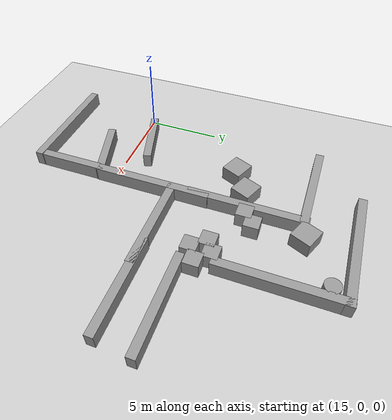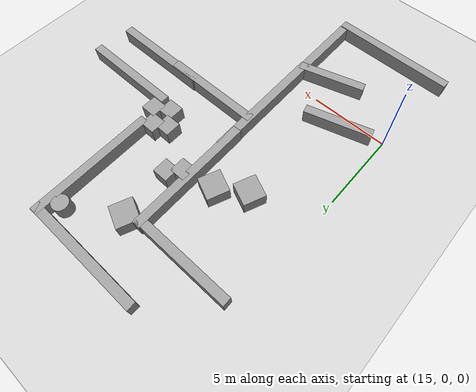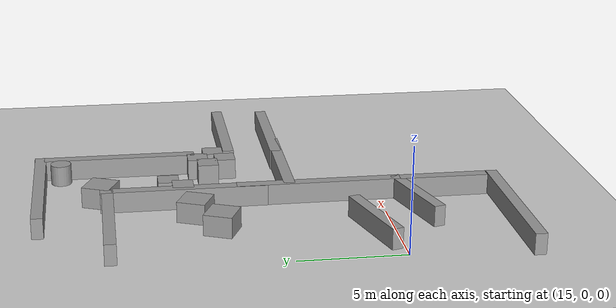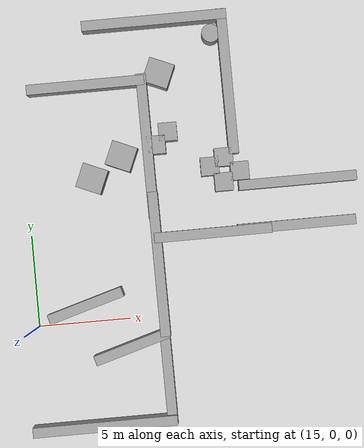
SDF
<sdf version="1.6">
 <world name="default">
  <model name="ground_plane">
   <static>1</static>
   <link name="link">
    <collision name="collision">
     <geometry><plane><normal>0 0 1</normal><size>100 100</size></plane></geometry>
     <surface><friction><ode><mu>100</mu><mu2>50</mu2></ode></friction></surface>
    </collision>
    <visual name="visual">
     <cast_shadows>0</cast_shadows>
     <geometry><plane><normal>0 0 1</normal><size>100 100</size></plane></geometry>
     <material>
      <script><uri>file://media/materials/scripts/gazebo.material</uri><name>Gazebo/Grey</name></script>
     </material>
    </visual>
   </link>
  </model>
  <model name="com760-maze">
   <link name="link_10">
    <pose>9.80009 2.02423 9e-06 0 -0 0</pose>
    <inertial>
     <mass>1</mass>
     <inertia>
      <ixx>0.166667</ixx>
      <ixy>0</ixy>
      <ixz>0</ixz>
      <iyy>0.166667</iyy>
      <iyz>0</iyz>
      <izz>0.166667</izz>
     </inertia>
    </inertial>
    <visual name="visual">
     <geometry><box><size>1 1 1</size></box></geometry>
     <material>
      <lighting>1</lighting>
      <script><uri>file://media/materials/scripts/gazebo.material</uri><name>Gazebo/Grey</name></script>
      <ambient>0.3 0.3 0.3 1</ambient>
      <diffuse>0.7 0.7 0.7 1</diffuse>
      <specular>0.01 0.01 0.01 1</specular>
      <emissive>0 0 0 1</emissive>
     </material>
    </visual>
    <collision name="collision">
     <geometry><box><size>1 1 1</size></box></geometry>
     <surface>
      <friction>
       <ode><mu>1</mu><mu2>1</mu2><fdir1>0 0 0</fdir1><slip1>0</slip1><slip2>0</slip2></ode>
       <torsional>
        <coefficient>1</coefficient>
        <patch_radius>0</patch_radius>
        <surface_radius>0</surface_radius>
        <use_patch_radius>1</use_patch_radius>
        <ode><slip>0</slip></ode>
       </torsional>
      </friction>
      <bounce><restitution_coefficient>0</restitution_coefficient><threshold>1e+06</threshold></bounce>
      <contact>
       <collide_without_contact>0</collide_without_contact>
       <collide_without_contact_bitmask>1</collide_without_contact_bitmask>
       <collide_bitmask>1</collide_bitmask>
       <ode>
        <soft_cfm>0</soft_cfm>
        <soft_erp>0.2</soft_erp>
        <kp>1e+13</kp>
        <kd>1</kd>
        <max_vel>0.01</max_vel>
        <min_depth>0</min_depth>
       </ode>
       <bullet>
        <split_impulse>1</split_impulse>
        <split_impulse_penetration_threshold>-0.01</split_impulse_penetration_threshold>
        <soft_cfm>0</soft_cfm>
        <soft_erp>0.2</soft_erp>
        <kp>1e+13</kp>
        <kd>1</kd>
       </bullet>
      </contact>
     </surface>
    </collision>
   </link>
   <link name="link_11">
    <pose>6.31823 4.34711 9e-06 0 -0 0</pose>
    <inertial>
     <mass>1</mass>
     <inertia>
      <ixx>0.166667</ixx>
      <ixy>0</ixy>
      <ixz>0</ixz>
      <iyy>0.166667</iyy>
      <iyz>0</iyz>
      <izz>0.166667</izz>
     </inertia>
    </inertial>
    <visual name="visual">
     <geometry><box><size>1 1 1</size></box></geometry>
     <material>
      <lighting>1</lighting>
      <script><uri>file://media/materials/scripts/gazebo.material</uri><name>Gazebo/Grey</name></script>
      <ambient>0.3 0.3 0.3 1</ambient>
      <diffuse>0.7 0.7 0.7 1</diffuse>
      <specular>0.01 0.01 0.01 1</specular>
      <emissive>0 0 0 1</emissive>
     </material>
    </visual>
    <collision name="collision">
     <geometry><box><size>1 1 1</size></box></geometry>
     <surface>
      <friction>
       <ode><mu>1</mu><mu2>1</mu2><fdir1>0 0 0</fdir1><slip1>0</slip1><slip2>0</slip2></ode>
       <torsional>
        <coefficient>1</coefficient>
        <patch_radius>0</patch_radius>
        <surface_radius>0</surface_radius>
        <use_patch_radius>1</use_patch_radius>
        <ode><slip>0</slip></ode>
       </torsional>
      </friction>
      <bounce><restitution_coefficient>0</restitution_coefficient><threshold>1e+06</threshold></bounce>
      <contact>
       <collide_without_contact>0</collide_without_contact>
       <collide_without_contact_bitmask>1</collide_without_contact_bitmask>
       <collide_bitmask>1</collide_bitmask>
       <ode>
        <soft_cfm>0</soft_cfm>
        <soft_erp>0.2</soft_erp>
        <kp>1e+13</kp>
        <kd>1</kd>
        <max_vel>0.01</max_vel>
        <min_depth>0</min_depth>
       </ode>
       <bullet>
        <split_impulse>1</split_impulse>
        <split_impulse_penetration_threshold>-0.01</split_impulse_penetration_threshold>
        <soft_cfm>0</soft_cfm>
        <soft_erp>0.2</soft_erp>
        <kp>1e+13</kp>
        <kd>1</kd>
       </bullet>
      </contact>
     </surface>
    </collision>
   </link>
   <link name="link_12">
    <pose>7.00494 5.00129 9e-06 0 -0 0</pose>
    <inertial>
     <mass>1</mass>
     <inertia>
      <ixx>0.166667</ixx>
      <ixy>0</ixy>
      <ixz>0</ixz>
      <iyy>0.166667</iyy>
      <iyz>0</iyz>
      <izz>0.166667</izz>
     </inertia>
    </inertial>
    <visual name="visual">
     <geometry><box><size>1 1 1</size></box></geometry>
     <material>
      <lighting>1</lighting>
      <script><uri>file://media/materials/scripts/gazebo.material</uri><name>Gazebo/Grey</name></script>
      <ambient>0.3 0.3 0.3 1</ambient>
      <diffuse>0.7 0.7 0.7 1</diffuse>
      <specular>0.01 0.01 0.01 1</specular>
      <emissive>0 0 0 1</emissive>
     </material>
    </visual>
    <collision name="collision">
     <geometry><box><size>1 1 1</size></box></geometry>
     <surface>
      <friction>
       <ode><mu>1</mu><mu2>1</mu2><fdir1>0 0 0</fdir1><slip1>0</slip1><slip2>0</slip2></ode>
       <torsional>
        <coefficient>1</coefficient>
        <patch_radius>0</patch_radius>
        <surface_radius>0</surface_radius>
        <use_patch_radius>1</use_patch_radius>
        <ode><slip>0</slip></ode>
       </torsional>
      </friction>
      <bounce><restitution_coefficient>0</restitution_coefficient><threshold>1e+06</threshold></bounce>
      <contact>
       <collide_without_contact>0</collide_without_contact>
       <collide_without_contact_bitmask>1</collide_without_contact_bitmask>
       <collide_bitmask>1</collide_bitmask>
       <ode>
        <soft_cfm>0</soft_cfm>
        <soft_erp>0.2</soft_erp>
        <kp>1e+13</kp>
        <kd>1</kd>
        <max_vel>0.01</max_vel>
        <min_depth>0</min_depth>
       </ode>
       <bullet>
        <split_impulse>1</split_impulse>
        <split_impulse_penetration_threshold>-0.01</split_impulse_penetration_threshold>
        <soft_cfm>0</soft_cfm>
        <soft_erp>0.2</soft_erp>
        <kp>1e+13</kp>
        <kd>1</kd>
       </bullet>
      </contact>
     </surface>
    </collision>
   </link>
   <link name="link_14">
    <pose>10.7124 2.54643 9e-06 0 -0 0</pose>
    <inertial>
     <mass>1</mass>
     <inertia>
      <ixx>0.166667</ixx>
      <ixy>0</ixy>
      <ixz>0</ixz>
      <iyy>0.166667</iyy>
      <iyz>0</iyz>
      <izz>0.166667</izz>
     </inertia>
    </inertial>
    <visual name="visual">
     <geometry><box><size>1 1 1</size></box></geometry>
     <material>
      <lighting>1</lighting>
      <script><uri>file://media/materials/scripts/gazebo.material</uri><name>Gazebo/Grey</name></script>
      <ambient>0.3 0.3 0.3 1</ambient>
      <diffuse>0.7 0.7 0.7 1</diffuse>
      <specular>0.01 0.01 0.01 1</specular>
      <emissive>0 0 0 1</emissive>
     </material>
    </visual>
    <collision name="collision">
     <geometry><box><size>1 1 1</size></box></geometry>
     <surface>
      <friction>
       <ode><mu>1</mu><mu2>1</mu2><fdir1>0 0 0</fdir1><slip1>0</slip1><slip2>0</slip2></ode>
       <torsional>
        <coefficient>1</coefficient>
        <patch_radius>0</patch_radius>
        <surface_radius>0</surface_radius>
        <use_patch_radius>1</use_patch_radius>
        <ode><slip>0</slip></ode>
       </torsional>
      </friction>
      <bounce><restitution_coefficient>0</restitution_coefficient><threshold>1e+06</threshold></bounce>
      <contact>
       <collide_without_contact>0</collide_without_contact>
       <collide_without_contact_bitmask>1</collide_without_contact_bitmask>
       <collide_bitmask>1</collide_bitmask>
       <ode>
        <soft_cfm>0</soft_cfm>
        <soft_erp>0.2</soft_erp>
        <kp>1e+13</kp>
        <kd>1</kd>
        <max_vel>0.01</max_vel>
        <min_depth>0</min_depth>
       </ode>
       <bullet>
        <split_impulse>1</split_impulse>
        <split_impulse_penetration_threshold>-0.01</split_impulse_penetration_threshold>
        <soft_cfm>0</soft_cfm>
        <soft_erp>0.2</soft_erp>
        <kp>1e+13</kp>
        <kd>1</kd>
       </bullet>
      </contact>
     </surface>
    </collision>
   </link>
   <link name="link_4_clone_0_clone_clone_1_clone_0_clone">
    <pose>2.19804 -10.643 9e-06 0 -0 0</pose>
    <inertial>
     <mass>4.30693</mass>
     <inertia><ixx>0.46587</ixx><ixy>0</ixy><ixz>0</ixz><iyy>22.6991</iyy><iyz>0</iyz><izz>22.4471</izz></inertia>
    </inertial>
    <visual name="visual">
     <geometry><box><size>7.88951 0.545905 1</size></box></geometry>
     <material>
      <lighting>1</lighting>
      <script><uri>file://media/materials/scripts/gazebo.material</uri><name>Gazebo/Grey</name></script>
      <ambient>0.3 0.3 0.3 1</ambient>
      <diffuse>0.7 0.7 0.7 1</diffuse>
      <specular>0.01 0.01 0.01 1</specular>
      <emissive>0 0 0 1</emissive>
      <shader type="pixel"/>
     </material>
    </visual>
    <collision name="collision">
     <geometry><box><size>7.88951 0.545905 1</size></box></geometry>
     <surface>
      <friction>
       <ode><mu>1</mu><mu2>1</mu2><fdir1>0 0 0</fdir1><slip1>0</slip1><slip2>0</slip2></ode>
       <torsional>
        <coefficient>1</coefficient>
        <patch_radius>0</patch_radius>
        <surface_radius>0</surface_radius>
        <use_patch_radius>1</use_patch_radius>
        <ode><slip>0</slip></ode>
       </torsional>
      </friction>
      <bounce><restitution_coefficient>0</restitution_coefficient><threshold>1e+06</threshold></bounce>
      <contact>
       <collide_without_contact>0</collide_without_contact>
       <collide_without_contact_bitmask>1</collide_without_contact_bitmask>
       <collide_bitmask>1</collide_bitmask>
       <ode>
        <soft_cfm>0</soft_cfm>
        <soft_erp>0.2</soft_erp>
        <kp>1e+13</kp>
        <kd>1</kd>
        <max_vel>0.01</max_vel>
        <min_depth>0</min_depth>
       </ode>
       <bullet>
        <split_impulse>1</split_impulse>
        <split_impulse_penetration_threshold>-0.01</split_impulse_penetration_threshold>
        <soft_cfm>0</soft_cfm>
        <soft_erp>0.2</soft_erp>
        <kp>1e+13</kp>
        <kd>1</kd>
       </bullet>
      </contact>
     </surface>
    </collision>
   </link>
   <link name="link_4_clone_0_clone_clone_1_clone_0_clone_0_clone">
    <pose>6.79233 11.1081 9e-06 0 -0 0</pose>
    <inertial>
     <mass>4.30693</mass>
     <inertia><ixx>0.46587</ixx><ixy>0</ixy><ixz>0</ixz><iyy>22.6991</iyy><iyz>0</iyz><izz>22.4471</izz></inertia>
    </inertial>
    <visual name="visual">
     <geometry><box><size>7.88951 0.545905 1</size></box></geometry>
     <material>
      <lighting>1</lighting>
      <script><uri>file://media/materials/scripts/gazebo.material</uri><name>Gazebo/Grey</name></script>
      <ambient>0.3 0.3 0.3 1</ambient>
      <diffuse>0.7 0.7 0.7 1</diffuse>
      <specular>0.01 0.01 0.01 1</specular>
      <emissive>0 0 0 1</emissive>
      <shader type="pixel"/>
     </material>
    </visual>
    <collision name="collision">
     <geometry><box><size>7.88951 0.545905 1</size></box></geometry>
     <surface>
      <friction>
       <ode><mu>1</mu><mu2>1</mu2><fdir1>0 0 0</fdir1><slip1>0</slip1><slip2>0</slip2></ode>
       <torsional>
        <coefficient>1</coefficient>
        <patch_radius>0</patch_radius>
        <surface_radius>0</surface_radius>
        <use_patch_radius>1</use_patch_radius>
        <ode><slip>0</slip></ode>
       </torsional>
      </friction>
      <bounce><restitution_coefficient>0</restitution_coefficient><threshold>1e+06</threshold></bounce>
      <contact>
       <collide_without_contact>0</collide_without_contact>
       <collide_without_contact_bitmask>1</collide_without_contact_bitmask>
       <collide_bitmask>1</collide_bitmask>
       <ode>
        <soft_cfm>0</soft_cfm>
        <soft_erp>0.2</soft_erp>
        <kp>1e+13</kp>
        <kd>1</kd>
        <max_vel>0.01</max_vel>
        <min_depth>0</min_depth>
       </ode>
       <bullet>
        <split_impulse>1</split_impulse>
        <split_impulse_penetration_threshold>-0.01</split_impulse_penetration_threshold>
        <soft_cfm>0</soft_cfm>
        <soft_erp>0.2</soft_erp>
        <kp>1e+13</kp>
        <kd>1</kd>
       </bullet>
      </contact>
     </surface>
    </collision>
   </link>
   <link name="link_4_clone_0_clone_clone_1_clone_clone">
    <pose>2.76705 7.92871 9e-06 0 -0 0</pose>
    <inertial>
     <mass>3.50538</mass>
     <inertia><ixx>0.379168</ixx><ixy>0</ixy><ixz>0</ixz><iyy>12.3366</iyy><iyz>0</iyz><izz>12.1315</izz></inertia>
    </inertial>
    <visual name="visual">
     <geometry><box><size>6.42122 0.545905 1</size></box></geometry>
     <material>
      <lighting>1</lighting>
      <script><uri>file://media/materials/scripts/gazebo.material</uri><name>Gazebo/Grey</name></script>
      <ambient>0.3 0.3 0.3 1</ambient>
      <diffuse>0.7 0.7 0.7 1</diffuse>
      <specular>0.01 0.01 0.01 1</specular>
      <emissive>0 0 0 1</emissive>
      <shader type="pixel"/>
     </material>
    </visual>
    <collision name="collision">
     <geometry><box><size>6.42122 0.545905 1</size></box></geometry>
     <surface>
      <friction>
       <ode><mu>1</mu><mu2>1</mu2><fdir1>0 0 0</fdir1><slip1>0</slip1><slip2>0</slip2></ode>
       <torsional>
        <coefficient>1</coefficient>
        <patch_radius>0</patch_radius>
        <surface_radius>0</surface_radius>
        <use_patch_radius>1</use_patch_radius>
        <ode><slip>0</slip></ode>
       </torsional>
      </friction>
      <bounce><restitution_coefficient>0</restitution_coefficient><threshold>1e+06</threshold></bounce>
      <contact>
       <collide_without_contact>0</collide_without_contact>
       <collide_without_contact_bitmask>1</collide_without_contact_bitmask>
       <collide_bitmask>1</collide_bitmask>
       <ode>
        <soft_cfm>0</soft_cfm>
        <soft_erp>0.2</soft_erp>
        <kp>1e+13</kp>
        <kd>1</kd>
        <max_vel>0.01</max_vel>
        <min_depth>0</min_depth>
       </ode>
       <bullet>
        <split_impulse>1</split_impulse>
        <split_impulse_penetration_threshold>-0.01</split_impulse_penetration_threshold>
        <soft_cfm>0</soft_cfm>
        <soft_erp>0.2</soft_erp>
        <kp>1e+13</kp>
        <kd>1</kd>
       </bullet>
      </contact>
     </surface>
    </collision>
   </link>
   <link name="link_4_clone_0_clone_clone_1_clone_clone_0">
    <pose>8.96944 -0.687018 9e-06 0 -0 0</pose>
    <inertial>
     <mass>3.50538</mass>
     <inertia><ixx>0.379168</ixx><ixy>0</ixy><ixz>0</ixz><iyy>12.3366</iyy><iyz>0</iyz><izz>12.1315</izz></inertia>
    </inertial>
    <visual name="visual">
     <geometry><box><size>6.42122 0.545905 1</size></box></geometry>
     <material>
      <lighting>1</lighting>
      <script><uri>file://media/materials/scripts/gazebo.material</uri><name>Gazebo/Grey</name></script>
      <ambient>0.3 0.3 0.3 1</ambient>
      <diffuse>0.7 0.7 0.7 1</diffuse>
      <specular>0.01 0.01 0.01 1</specular>
      <emissive>0 0 0 1</emissive>
      <shader type="pixel"/>
     </material>
    </visual>
    <collision name="collision">
     <geometry><box><size>6.42122 0.545905 1</size></box></geometry>
     <surface>
      <friction>
       <ode><mu>1</mu><mu2>1</mu2><fdir1>0 0 0</fdir1><slip1>0</slip1><slip2>0</slip2></ode>
       <torsional>
        <coefficient>1</coefficient>
        <patch_radius>0</patch_radius>
        <surface_radius>0</surface_radius>
        <use_patch_radius>1</use_patch_radius>
        <ode><slip>0</slip></ode>
       </torsional>
      </friction>
      <bounce><restitution_coefficient>0</restitution_coefficient><threshold>1e+06</threshold></bounce>
      <contact>
       <collide_without_contact>0</collide_without_contact>
       <collide_without_contact_bitmask>1</collide_without_contact_bitmask>
       <collide_bitmask>1</collide_bitmask>
       <ode>
        <soft_cfm>0</soft_cfm>
        <soft_erp>0.2</soft_erp>
        <kp>1e+13</kp>
        <kd>1</kd>
        <max_vel>0.01</max_vel>
        <min_depth>0</min_depth>
       </ode>
       <bullet>
        <split_impulse>1</split_impulse>
        <split_impulse_penetration_threshold>-0.01</split_impulse_penetration_threshold>
        <soft_cfm>0</soft_cfm>
        <soft_erp>0.2</soft_erp>
        <kp>1e+13</kp>
        <kd>1</kd>
       </bullet>
      </contact>
     </surface>
    </collision>
   </link>
   <link name="link_4_clone_0_clone_clone_1_clone_clone_0_clone">
    <pose>13.8 1.7484 9e-06 0 -0 0</pose>
    <inertial>
     <mass>3.50538</mass>
     <inertia><ixx>0.379168</ixx><ixy>0</ixy><ixz>0</ixz><iyy>12.3366</iyy><iyz>0</iyz><izz>12.1315</izz></inertia>
    </inertial>
    <visual name="visual">
     <geometry><box><size>6.42122 0.545905 1</size></box></geometry>
     <material>
      <lighting>1</lighting>
      <script><uri>file://media/materials/scripts/gazebo.material</uri><name>Gazebo/Grey</name></script>
      <ambient>0.3 0.3 0.3 1</ambient>
      <diffuse>0.7 0.7 0.7 1</diffuse>
      <specular>0.01 0.01 0.01 1</specular>
      <emissive>0 0 0 1</emissive>
      <shader type="pixel"/>
     </material>
    </visual>
    <collision name="collision">
     <geometry><box><size>6.42122 0.545905 1</size></box></geometry>
     <surface>
      <friction>
       <ode><mu>1</mu><mu2>1</mu2><fdir1>0 0 0</fdir1><slip1>0</slip1><slip2>0</slip2></ode>
       <torsional>
        <coefficient>1</coefficient>
        <patch_radius>0</patch_radius>
        <surface_radius>0</surface_radius>
        <use_patch_radius>1</use_patch_radius>
        <ode><slip>0</slip></ode>
       </torsional>
      </friction>
      <bounce><restitution_coefficient>0</restitution_coefficient><threshold>1e+06</threshold></bounce>
      <contact>
       <collide_without_contact>0</collide_without_contact>
       <collide_without_contact_bitmask>1</collide_without_contact_bitmask>
       <collide_bitmask>1</collide_bitmask>
       <ode>
        <soft_cfm>0</soft_cfm>
        <soft_erp>0.2</soft_erp>
        <kp>1e+13</kp>
        <kd>1</kd>
        <max_vel>0.01</max_vel>
        <min_depth>0</min_depth>
       </ode>
       <bullet>
        <split_impulse>1</split_impulse>
        <split_impulse_penetration_threshold>-0.01</split_impulse_penetration_threshold>
        <soft_cfm>0</soft_cfm>
        <soft_erp>0.2</soft_erp>
        <kp>1e+13</kp>
        <kd>1</kd>
       </bullet>
      </contact>
     </surface>
    </collision>
   </link>
   <link name="link_4_clone_0_clone_clone_1_clone_clone_1">
    <pose>13.5436 -0.632276 9e-06 0 -0 0</pose>
    <inertial>
     <mass>3.50538</mass>
     <inertia><ixx>0.379168</ixx><ixy>0</ixy><ixz>0</ixz><iyy>12.3366</iyy><iyz>0</iyz><izz>12.1315</izz></inertia>
    </inertial>
    <visual name="visual">
     <geometry><box><size>6.42122 0.545905 1</size></box></geometry>
     <material>
      <lighting>1</lighting>
      <script><uri>file://media/materials/scripts/gazebo.material</uri><name>Gazebo/Grey</name></script>
      <ambient>0.3 0.3 0.3 1</ambient>
      <diffuse>0.7 0.7 0.7 1</diffuse>
      <specular>0.01 0.01 0.01 1</specular>
      <emissive>0 0 0 1</emissive>
      <shader type="pixel"/>
     </material>
    </visual>
    <collision name="collision">
     <geometry><box><size>6.42122 0.545905 1</size></box></geometry>
     <surface>
      <friction>
       <ode><mu>1</mu><mu2>1</mu2><fdir1>0 0 0</fdir1><slip1>0</slip1><slip2>0</slip2></ode>
       <torsional>
        <coefficient>1</coefficient>
        <patch_radius>0</patch_radius>
        <surface_radius>0</surface_radius>
        <use_patch_radius>1</use_patch_radius>
        <ode><slip>0</slip></ode>
       </torsional>
      </friction>
      <bounce><restitution_coefficient>0</restitution_coefficient><threshold>1e+06</threshold></bounce>
      <contact>
       <collide_without_contact>0</collide_without_contact>
       <collide_without_contact_bitmask>1</collide_without_contact_bitmask>
       <collide_bitmask>1</collide_bitmask>
       <ode>
        <soft_cfm>0</soft_cfm>
        <soft_erp>0.2</soft_erp>
        <kp>1e+13</kp>
        <kd>1</kd>
        <max_vel>0.01</max_vel>
        <min_depth>0</min_depth>
       </ode>
       <bullet>
        <split_impulse>1</split_impulse>
        <split_impulse_penetration_threshold>-0.01</split_impulse_penetration_threshold>
        <soft_cfm>0</soft_cfm>
        <soft_erp>0.2</soft_erp>
        <kp>1e+13</kp>
        <kd>1</kd>
       </bullet>
      </contact>
     </surface>
    </collision>
   </link>
   <link name="link_4_clone_1_clone_1_clone_0_clone">
    <pose>5.88859 -2.1218 9e-06 -0 -0 -1.56693</pose>
    <inertial>
     <mass>4.30693</mass>
     <inertia><ixx>0.46587</ixx><ixy>0</ixy><ixz>0</ixz><iyy>22.6991</iyy><iyz>0</iyz><izz>22.4471</izz></inertia>
    </inertial>
    <visual name="visual">
     <geometry><box><size>7.88951 0.545905 1</size></box></geometry>
     <material>
      <lighting>1</lighting>
      <script><uri>file://media/materials/scripts/gazebo.material</uri><name>Gazebo/Grey</name></script>
      <ambient>0.3 0.3 0.3 1</ambient>
      <diffuse>0.7 0.7 0.7 1</diffuse>
      <specular>0.01 0.01 0.01 1</specular>
      <emissive>0 0 0 1</emissive>
      <shader type="pixel"/>
     </material>
    </visual>
    <collision name="collision">
     <geometry><box><size>7.88951 0.545905 1</size></box></geometry>
     <surface>
      <friction>
       <ode><mu>1</mu><mu2>1</mu2><fdir1>0 0 0</fdir1><slip1>0</slip1><slip2>0</slip2></ode>
       <torsional>
        <coefficient>1</coefficient>
        <patch_radius>0</patch_radius>
        <surface_radius>0</surface_radius>
        <use_patch_radius>1</use_patch_radius>
        <ode><slip>0</slip></ode>
       </torsional>
      </friction>
      <bounce><restitution_coefficient>0</restitution_coefficient><threshold>1e+06</threshold></bounce>
      <contact>
       <collide_without_contact>0</collide_without_contact>
       <collide_without_contact_bitmask>1</collide_without_contact_bitmask>
       <collide_bitmask>1</collide_bitmask>
       <ode>
        <soft_cfm>0</soft_cfm>
        <soft_erp>0.2</soft_erp>
        <kp>1e+13</kp>
        <kd>1</kd>
        <max_vel>0.01</max_vel>
        <min_depth>0</min_depth>
       </ode>
       <bullet>
        <split_impulse>1</split_impulse>
        <split_impulse_penetration_threshold>-0.01</split_impulse_penetration_threshold>
        <soft_cfm>0</soft_cfm>
        <soft_erp>0.2</soft_erp>
        <kp>1e+13</kp>
        <kd>1</kd>
       </bullet>
      </contact>
     </surface>
    </collision>
   </link>
   <link name="link_4_clone_1_clone_1_clone_0_clone_clone">
    <pose>10.4715 7.44804 9e-06 -0 -0 -1.56693</pose>
    <inertial>
     <mass>4.30693</mass>
     <inertia><ixx>0.46587</ixx><ixy>0</ixy><ixz>0</ixz><iyy>22.6991</iyy><iyz>0</iyz><izz>22.4471</izz></inertia>
    </inertial>
    <visual name="visual">
     <geometry><box><size>7.88951 0.545905 1</size></box></geometry>
     <material>
      <lighting>1</lighting>
      <script><uri>file://media/materials/scripts/gazebo.material</uri><name>Gazebo/Grey</name></script>
      <ambient>0.3 0.3 0.3 1</ambient>
      <diffuse>0.7 0.7 0.7 1</diffuse>
      <specular>0.01 0.01 0.01 1</specular>
      <emissive>0 0 0 1</emissive>
      <shader type="pixel"/>
     </material>
    </visual>
    <collision name="collision">
     <geometry><box><size>7.88951 0.545905 1</size></box></geometry>
     <surface>
      <friction>
       <ode><mu>1</mu><mu2>1</mu2><fdir1>0 0 0</fdir1><slip1>0</slip1><slip2>0</slip2></ode>
       <torsional>
        <coefficient>1</coefficient>
        <patch_radius>0</patch_radius>
        <surface_radius>0</surface_radius>
        <use_patch_radius>1</use_patch_radius>
        <ode><slip>0</slip></ode>
       </torsional>
      </friction>
      <bounce><restitution_coefficient>0</restitution_coefficient><threshold>1e+06</threshold></bounce>
      <contact>
       <collide_without_contact>0</collide_without_contact>
       <collide_without_contact_bitmask>1</collide_without_contact_bitmask>
       <collide_bitmask>1</collide_bitmask>
       <ode>
        <soft_cfm>0</soft_cfm>
        <soft_erp>0.2</soft_erp>
        <kp>1e+13</kp>
        <kd>1</kd>
        <max_vel>0.01</max_vel>
        <min_depth>0</min_depth>
       </ode>
       <bullet>
        <split_impulse>1</split_impulse>
        <split_impulse_penetration_threshold>-0.01</split_impulse_penetration_threshold>
        <soft_cfm>0</soft_cfm>
        <soft_erp>0.2</soft_erp>
        <kp>1e+13</kp>
        <kd>1</kd>
       </bullet>
      </contact>
     </surface>
    </collision>
   </link>
   <link name="link_4_clone_1_clone_1_clone_1">
    <pose>5.82858 4.32024 9e-06 -0 -0 -1.56693</pose>
    <inertial>
     <mass>4.30693</mass>
     <inertia><ixx>0.46587</ixx><ixy>0</ixy><ixz>0</ixz><iyy>22.6991</iyy><iyz>0</iyz><izz>22.4471</izz></inertia>
    </inertial>
    <visual name="visual">
     <geometry><box><size>7.88951 0.545905 1</size></box></geometry>
     <material>
      <lighting>1</lighting>
      <script><uri>file://media/materials/scripts/gazebo.material</uri><name>Gazebo/Grey</name></script>
      <ambient>0.3 0.3 0.3 1</ambient>
      <diffuse>0.7 0.7 0.7 1</diffuse>
      <specular>0.01 0.01 0.01 1</specular>
      <emissive>0 0 0 1</emissive>
      <shader type="pixel"/>
     </material>
    </visual>
    <collision name="collision">
     <geometry><box><size>7.88951 0.545905 1</size></box></geometry>
     <surface>
      <friction>
       <ode><mu>1</mu><mu2>1</mu2><fdir1>0 0 0</fdir1><slip1>0</slip1><slip2>0</slip2></ode>
       <torsional>
        <coefficient>1</coefficient>
        <patch_radius>0</patch_radius>
        <surface_radius>0</surface_radius>
        <use_patch_radius>1</use_patch_radius>
        <ode><slip>0</slip></ode>
       </torsional>
      </friction>
      <bounce><restitution_coefficient>0</restitution_coefficient><threshold>1e+06</threshold></bounce>
      <contact>
       <collide_without_contact>0</collide_without_contact>
       <collide_without_contact_bitmask>1</collide_without_contact_bitmask>
       <collide_bitmask>1</collide_bitmask>
       <ode>
        <soft_cfm>0</soft_cfm>
        <soft_erp>0.2</soft_erp>
        <kp>1e+13</kp>
        <kd>1</kd>
        <max_vel>0.01</max_vel>
        <min_depth>0</min_depth>
       </ode>
       <bullet>
        <split_impulse>1</split_impulse>
        <split_impulse_penetration_threshold>-0.01</split_impulse_penetration_threshold>
        <soft_cfm>0</soft_cfm>
        <soft_erp>0.2</soft_erp>
        <kp>1e+13</kp>
        <kd>1</kd>
       </bullet>
      </contact>
     </surface>
    </collision>
   </link>
   <link name="link_4_clone_1_clone_1_clone_clone_0_clone">
    <pose>4.03057 -6.47031 9e-06 0 -0 0.2833</pose>
    <inertial>
     <mass>2.3361</mass>
     <inertia><ixx>0.25269</ixx><ixy>0</ixy><ixz>0</ixz><iyy>3.75965</iyy><iyz>0</iyz><izz>3.62299</izz></inertia>
    </inertial>
    <visual name="visual">
     <geometry><box><size>4.27931 0.545905 1</size></box></geometry>
     <material>
      <lighting>1</lighting>
      <script><uri>file://media/materials/scripts/gazebo.material</uri><name>Gazebo/Grey</name></script>
      <ambient>0.3 0.3 0.3 1</ambient>
      <diffuse>0.7 0.7 0.7 1</diffuse>
      <specular>0.01 0.01 0.01 1</specular>
      <emissive>0 0 0 1</emissive>
      <shader type="pixel"/>
     </material>
    </visual>
    <collision name="collision">
     <geometry><box><size>4.27931 0.545905 1</size></box></geometry>
     <surface>
      <friction>
       <ode><mu>1</mu><mu2>1</mu2><fdir1>0 0 0</fdir1><slip1>0</slip1><slip2>0</slip2></ode>
       <torsional>
        <coefficient>1</coefficient>
        <patch_radius>0</patch_radius>
        <surface_radius>0</surface_radius>
        <use_patch_radius>1</use_patch_radius>
        <ode><slip>0</slip></ode>
       </torsional>
      </friction>
      <bounce><restitution_coefficient>0</restitution_coefficient><threshold>1e+06</threshold></bounce>
      <contact>
       <collide_without_contact>0</collide_without_contact>
       <collide_without_contact_bitmask>1</collide_without_contact_bitmask>
       <collide_bitmask>1</collide_bitmask>
       <ode>
        <soft_cfm>0</soft_cfm>
        <soft_erp>0.2</soft_erp>
        <kp>1e+13</kp>
        <kd>1</kd>
        <max_vel>0.01</max_vel>
        <min_depth>0</min_depth>
       </ode>
       <bullet>
        <split_impulse>1</split_impulse>
        <split_impulse_penetration_threshold>-0.01</split_impulse_penetration_threshold>
        <soft_cfm>0</soft_cfm>
        <soft_erp>0.2</soft_erp>
        <kp>1e+13</kp>
        <kd>1</kd>
       </bullet>
      </contact>
     </surface>
    </collision>
   </link>
   <link name="link_4_clone_1_clone_1_clone_clone_0_clone_1">
    <pose>5.87005 -8.18932 9e-06 -0 -0 -1.56693</pose>
    <inertial>
     <mass>2.3361</mass>
     <inertia><ixx>0.25269</ixx><ixy>0</ixy><ixz>0</ixz><iyy>3.75965</iyy><iyz>0</iyz><izz>3.62299</izz></inertia>
    </inertial>
    <visual name="visual">
     <geometry><box><size>4.27931 0.545905 1</size></box></geometry>
     <material>
      <lighting>1</lighting>
      <script><uri>file://media/materials/scripts/gazebo.material</uri><name>Gazebo/Grey</name></script>
      <ambient>0.3 0.3 0.3 1</ambient>
      <diffuse>0.7 0.7 0.7 1</diffuse>
      <specular>0.01 0.01 0.01 1</specular>
      <emissive>0 0 0 1</emissive>
      <shader type="pixel"/>
     </material>
    </visual>
    <collision name="collision">
     <geometry><box><size>4.27931 0.545905 1</size></box></geometry>
     <surface>
      <friction>
       <ode><mu>1</mu><mu2>1</mu2><fdir1>0 0 0</fdir1><slip1>0</slip1><slip2>0</slip2></ode>
       <torsional>
        <coefficient>1</coefficient>
        <patch_radius>0</patch_radius>
        <surface_radius>0</surface_radius>
        <use_patch_radius>1</use_patch_radius>
        <ode><slip>0</slip></ode>
       </torsional>
      </friction>
      <bounce><restitution_coefficient>0</restitution_coefficient><threshold>1e+06</threshold></bounce>
      <contact>
       <collide_without_contact>0</collide_without_contact>
       <collide_without_contact_bitmask>1</collide_without_contact_bitmask>
       <collide_bitmask>1</collide_bitmask>
       <ode>
        <soft_cfm>0</soft_cfm>
        <soft_erp>0.2</soft_erp>
        <kp>1e+13</kp>
        <kd>1</kd>
        <max_vel>0.01</max_vel>
        <min_depth>0</min_depth>
       </ode>
       <bullet>
        <split_impulse>1</split_impulse>
        <split_impulse_penetration_threshold>-0.01</split_impulse_penetration_threshold>
        <soft_cfm>0</soft_cfm>
        <soft_erp>0.2</soft_erp>
        <kp>1e+13</kp>
        <kd>1</kd>
       </bullet>
      </contact>
     </surface>
    </collision>
   </link>
   <link name="link_4_clone_1_clone_1_clone_clone_0_clone_clone">
    <pose>1.7146 -4.01354 9e-06 0 -0 0.2833</pose>
    <inertial>
     <mass>2.3361</mass>
     <inertia><ixx>0.25269</ixx><ixy>0</ixy><ixz>0</ixz><iyy>3.75965</iyy><iyz>0</iyz><izz>3.62299</izz></inertia>
    </inertial>
    <visual name="visual">
     <geometry><box><size>4.27931 0.545905 1</size></box></geometry>
     <material>
      <lighting>1</lighting>
      <script><uri>file://media/materials/scripts/gazebo.material</uri><name>Gazebo/Grey</name></script>
      <ambient>0.3 0.3 0.3 1</ambient>
      <diffuse>0.7 0.7 0.7 1</diffuse>
      <specular>0.01 0.01 0.01 1</specular>
      <emissive>0 0 0 1</emissive>
      <shader type="pixel"/>
     </material>
    </visual>
    <collision name="collision">
     <geometry><box><size>4.27931 0.545905 1</size></box></geometry>
     <surface>
      <friction>
       <ode><mu>1</mu><mu2>1</mu2><fdir1>0 0 0</fdir1><slip1>0</slip1><slip2>0</slip2></ode>
       <torsional>
        <coefficient>1</coefficient>
        <patch_radius>0</patch_radius>
        <surface_radius>0</surface_radius>
        <use_patch_radius>1</use_patch_radius>
        <ode><slip>0</slip></ode>
       </torsional>
      </friction>
      <bounce><restitution_coefficient>0</restitution_coefficient><threshold>1e+06</threshold></bounce>
      <contact>
       <collide_without_contact>0</collide_without_contact>
       <collide_without_contact_bitmask>1</collide_without_contact_bitmask>
       <collide_bitmask>1</collide_bitmask>
       <ode>
        <soft_cfm>0</soft_cfm>
        <soft_erp>0.2</soft_erp>
        <kp>1e+13</kp>
        <kd>1</kd>
        <max_vel>0.01</max_vel>
        <min_depth>0</min_depth>
       </ode>
       <bullet>
        <split_impulse>1</split_impulse>
        <split_impulse_penetration_threshold>-0.01</split_impulse_penetration_threshold>
        <soft_cfm>0</soft_cfm>
        <soft_erp>0.2</soft_erp>
        <kp>1e+13</kp>
        <kd>1</kd>
       </bullet>
      </contact>
     </surface>
    </collision>
   </link>
   <link name="link_6_clone_clone">
    <pose>2.67865 2.83156 9e-06 0 0 -0.406538</pose>
    <inertial>
     <mass>1.94722</mass>
     <inertia><ixx>0.463684</ixx><ixy>0</ixy><ixz>0</ixz><iyy>0.4935</iyy><iyz>0</iyz><izz>0.632648</izz></inertia>
    </inertial>
    <visual name="visual">
     <geometry><box><size>1.42873 1.36291 1</size></box></geometry>
     <material>
      <lighting>1</lighting>
      <script><uri>file://media/materials/scripts/gazebo.material</uri><name>Gazebo/Grey</name></script>
      <ambient>0.3 0.3 0.3 1</ambient>
      <diffuse>0.7 0.7 0.7 1</diffuse>
      <specular>0.01 0.01 0.01 1</specular>
      <emissive>0 0 0 1</emissive>
      <shader type="pixel"/>
     </material>
    </visual>
    <collision name="collision">
     <geometry><box><size>1.42873 1.36291 1</size></box></geometry>
     <surface>
      <friction>
       <ode><mu>1</mu><mu2>1</mu2><fdir1>0 0 0</fdir1><slip1>0</slip1><slip2>0</slip2></ode>
       <torsional>
        <coefficient>1</coefficient>
        <patch_radius>0</patch_radius>
        <surface_radius>0</surface_radius>
        <use_patch_radius>1</use_patch_radius>
        <ode><slip>0</slip></ode>
       </torsional>
      </friction>
      <bounce><restitution_coefficient>0</restitution_coefficient><threshold>1e+06</threshold></bounce>
      <contact>
       <collide_without_contact>0</collide_without_contact>
       <collide_without_contact_bitmask>1</collide_without_contact_bitmask>
       <collide_bitmask>1</collide_bitmask>
       <ode>
        <soft_cfm>0</soft_cfm>
        <soft_erp>0.2</soft_erp>
        <kp>1e+13</kp>
        <kd>1</kd>
        <max_vel>0.01</max_vel>
        <min_depth>0</min_depth>
       </ode>
       <bullet>
        <split_impulse>1</split_impulse>
        <split_impulse_penetration_threshold>-0.01</split_impulse_penetration_threshold>
        <soft_cfm>0</soft_cfm>
        <soft_erp>0.2</soft_erp>
        <kp>1e+13</kp>
        <kd>1</kd>
       </bullet>
      </contact>
     </surface>
    </collision>
   </link>
   <link name="link_6_clone_clone_0">
    <pose>4.37408 3.90111 9e-06 0 0 -0.406538</pose>
    <inertial>
     <mass>1.94722</mass>
     <inertia><ixx>0.463684</ixx><ixy>0</ixy><ixz>0</ixz><iyy>0.4935</iyy><iyz>0</iyz><izz>0.632648</izz></inertia>
    </inertial>
    <visual name="visual">
     <geometry><box><size>1.42873 1.36291 1</size></box></geometry>
     <material>
      <lighting>1</lighting>
      <script><uri>file://media/materials/scripts/gazebo.material</uri><name>Gazebo/Grey</name></script>
      <ambient>0.3 0.3 0.3 1</ambient>
      <diffuse>0.7 0.7 0.7 1</diffuse>
      <specular>0.01 0.01 0.01 1</specular>
      <emissive>0 0 0 1</emissive>
      <shader type="pixel"/>
     </material>
    </visual>
    <collision name="collision">
     <geometry><box><size>1.42873 1.36291 1</size></box></geometry>
     <surface>
      <friction>
       <ode><mu>1</mu><mu2>1</mu2><fdir1>0 0 0</fdir1><slip1>0</slip1><slip2>0</slip2></ode>
       <torsional>
        <coefficient>1</coefficient>
        <patch_radius>0</patch_radius>
        <surface_radius>0</surface_radius>
        <use_patch_radius>1</use_patch_radius>
        <ode><slip>0</slip></ode>
       </torsional>
      </friction>
      <bounce><restitution_coefficient>0</restitution_coefficient><threshold>1e+06</threshold></bounce>
      <contact>
       <collide_without_contact>0</collide_without_contact>
       <collide_without_contact_bitmask>1</collide_without_contact_bitmask>
       <collide_bitmask>1</collide_bitmask>
       <ode>
        <soft_cfm>0</soft_cfm>
        <soft_erp>0.2</soft_erp>
        <kp>1e+13</kp>
        <kd>1</kd>
        <max_vel>0.01</max_vel>
        <min_depth>0</min_depth>
       </ode>
       <bullet>
        <split_impulse>1</split_impulse>
        <split_impulse_penetration_threshold>-0.01</split_impulse_penetration_threshold>
        <soft_cfm>0</soft_cfm>
        <soft_erp>0.2</soft_erp>
        <kp>1e+13</kp>
        <kd>1</kd>
       </bullet>
      </contact>
     </surface>
    </collision>
   </link>
   <link name="link_6_clone_clone_0_clone_clone">
    <pose>6.7785 8.2182 9e-06 0 0 -0.406538</pose>
    <inertial>
     <mass>1.94722</mass>
     <inertia><ixx>0.463684</ixx><ixy>0</ixy><ixz>0</ixz><iyy>0.4935</iyy><iyz>0</iyz><izz>0.632648</izz></inertia>
    </inertial>
    <visual name="visual">
     <geometry><box><size>1.42873 1.36291 1</size></box></geometry>
     <material>
      <lighting>1</lighting>
      <script><uri>file://media/materials/scripts/gazebo.material</uri><name>Gazebo/Grey</name></script>
      <ambient>0.3 0.3 0.3 1</ambient>
      <diffuse>0.7 0.7 0.7 1</diffuse>
      <specular>0.01 0.01 0.01 1</specular>
      <emissive>0 0 0 1</emissive>
      <shader type="pixel"/>
     </material>
    </visual>
    <collision name="collision">
     <geometry><box><size>1.42873 1.36291 1</size></box></geometry>
     <surface>
      <friction>
       <ode><mu>1</mu><mu2>1</mu2><fdir1>0 0 0</fdir1><slip1>0</slip1><slip2>0</slip2></ode>
       <torsional>
        <coefficient>1</coefficient>
        <patch_radius>0</patch_radius>
        <surface_radius>0</surface_radius>
        <use_patch_radius>1</use_patch_radius>
        <ode><slip>0</slip></ode>
       </torsional>
      </friction>
      <bounce><restitution_coefficient>0</restitution_coefficient><threshold>1e+06</threshold></bounce>
      <contact>
       <collide_without_contact>0</collide_without_contact>
       <collide_without_contact_bitmask>1</collide_without_contact_bitmask>
       <collide_bitmask>1</collide_bitmask>
       <ode>
        <soft_cfm>0</soft_cfm>
        <soft_erp>0.2</soft_erp>
        <kp>1e+13</kp>
        <kd>1</kd>
        <max_vel>0.01</max_vel>
        <min_depth>0</min_depth>
       </ode>
       <bullet>
        <split_impulse>1</split_impulse>
        <split_impulse_penetration_threshold>-0.01</split_impulse_penetration_threshold>
        <soft_cfm>0</soft_cfm>
        <soft_erp>0.2</soft_erp>
        <kp>1e+13</kp>
        <kd>1</kd>
       </bullet>
      </contact>
     </surface>
    </collision>
   </link>
   <link name="link_7">
    <pose>9.80695 10.1149 9e-06 0 -0 0</pose>
    <inertial>
     <mass>1</mass>
     <inertia><ixx>0.145833</ixx><ixy>0</ixy><ixz>0</ixz><iyy>0.145833</iyy><iyz>0</iyz><izz>0.125</izz></inertia>
    </inertial>
    <visual name="visual">
     <geometry><cylinder><radius>0.5</radius><length>1</length></cylinder></geometry>
     <material>
      <lighting>1</lighting>
      <script><uri>file://media/materials/scripts/gazebo.material</uri><name>Gazebo/Grey</name></script>
      <ambient>0.3 0.3 0.3 1</ambient>
      <diffuse>0.7 0.7 0.7 1</diffuse>
      <specular>0.01 0.01 0.01 1</specular>
      <emissive>0 0 0 1</emissive>
     </material>
    </visual>
    <collision name="collision">
     <geometry><cylinder><radius>0.5</radius><length>1</length></cylinder></geometry>
     <surface>
      <friction>
       <ode><mu>1</mu><mu2>1</mu2><fdir1>0 0 0</fdir1><slip1>0</slip1><slip2>0</slip2></ode>
       <torsional>
        <coefficient>1</coefficient>
        <patch_radius>0</patch_radius>
        <surface_radius>0</surface_radius>
        <use_patch_radius>1</use_patch_radius>
        <ode><slip>0</slip></ode>
       </torsional>
      </friction>
      <bounce><restitution_coefficient>0</restitution_coefficient><threshold>1e+06</threshold></bounce>
      <contact>
       <collide_without_contact>0</collide_without_contact>
       <collide_without_contact_bitmask>1</collide_without_contact_bitmask>
       <collide_bitmask>1</collide_bitmask>
       <ode>
        <soft_cfm>0</soft_cfm>
        <soft_erp>0.2</soft_erp>
        <kp>1e+13</kp>
        <kd>1</kd>
        <max_vel>0.01</max_vel>
        <min_depth>0</min_depth>
       </ode>
       <bullet>
        <split_impulse>1</split_impulse>
        <split_impulse_penetration_threshold>-0.01</split_impulse_penetration_threshold>
        <soft_cfm>0</soft_cfm>
        <soft_erp>0.2</soft_erp>
        <kp>1e+13</kp>
        <kd>1</kd>
       </bullet>
      </contact>
     </surface>
    </collision>
   </link>
   <link name="link_8">
    <pose>9.90915 3.36462 9e-06 0 -0 0</pose>
    <inertial>
     <mass>1</mass>
     <inertia>
      <ixx>0.166667</ixx>
      <ixy>0</ixy>
      <ixz>0</ixz>
      <iyy>0.166667</iyy>
      <iyz>0</iyz>
      <izz>0.166667</izz>
     </inertia>
    </inertial>
    <visual name="visual">
     <geometry><box><size>1 1 1</size></box></geometry>
     <material>
      <lighting>1</lighting>
      <script><uri>file://media/materials/scripts/gazebo.material</uri><name>Gazebo/Grey</name></script>
      <ambient>0.3 0.3 0.3 1</ambient>
      <diffuse>0.7 0.7 0.7 1</diffuse>
      <specular>0.01 0.01 0.01 1</specular>
      <emissive>0 0 0 1</emissive>
     </material>
    </visual>
    <collision name="collision">
     <geometry><box><size>1 1 1</size></box></geometry>
     <surface>
      <friction>
       <ode><mu>1</mu><mu2>1</mu2><fdir1>0 0 0</fdir1><slip1>0</slip1><slip2>0</slip2></ode>
       <torsional>
        <coefficient>1</coefficient>
        <patch_radius>0</patch_radius>
        <surface_radius>0</surface_radius>
        <use_patch_radius>1</use_patch_radius>
        <ode><slip>0</slip></ode>
       </torsional>
      </friction>
      <bounce><restitution_coefficient>0</restitution_coefficient><threshold>1e+06</threshold></bounce>
      <contact>
       <collide_without_contact>0</collide_without_contact>
       <collide_without_contact_bitmask>1</collide_without_contact_bitmask>
       <collide_bitmask>1</collide_bitmask>
       <ode>
        <soft_cfm>0</soft_cfm>
        <soft_erp>0.2</soft_erp>
        <kp>1e+13</kp>
        <kd>1</kd>
        <max_vel>0.01</max_vel>
        <min_depth>0</min_depth>
       </ode>
       <bullet>
        <split_impulse>1</split_impulse>
        <split_impulse_penetration_threshold>-0.01</split_impulse_penetration_threshold>
        <soft_cfm>0</soft_cfm>
        <soft_erp>0.2</soft_erp>
        <kp>1e+13</kp>
        <kd>1</kd>
       </bullet>
      </contact>
     </surface>
    </collision>
   </link>
   <link name="link_9">
    <pose>9.11198 2.92169 9e-06 0 -0 0</pose>
    <inertial>
     <mass>1</mass>
     <inertia>
      <ixx>0.166667</ixx>
      <ixy>0</ixy>
      <ixz>0</ixz>
      <iyy>0.166667</iyy>
      <iyz>0</iyz>
      <izz>0.166667</izz>
     </inertia>
    </inertial>
    <visual name="visual">
     <geometry><box><size>1 1 1</size></box></geometry>
     <material>
      <lighting>1</lighting>
      <script><uri>file://media/materials/scripts/gazebo.material</uri><name>Gazebo/Grey</name></script>
      <ambient>0.3 0.3 0.3 1</ambient>
      <diffuse>0.7 0.7 0.7 1</diffuse>
      <specular>0.01 0.01 0.01 1</specular>
      <emissive>0 0 0 1</emissive>
     </material>
    </visual>
    <collision name="collision">
     <geometry><box><size>1 1 1</size></box></geometry>
     <surface>
      <friction>
       <ode><mu>1</mu><mu2>1</mu2><fdir1>0 0 0</fdir1><slip1>0</slip1><slip2>0</slip2></ode>
       <torsional>
        <coefficient>1</coefficient>
        <patch_radius>0</patch_radius>
        <surface_radius>0</surface_radius>
        <use_patch_radius>1</use_patch_radius>
        <ode><slip>0</slip></ode>
       </torsional>
      </friction>
      <bounce><restitution_coefficient>0</restitution_coefficient><threshold>1e+06</threshold></bounce>
      <contact>
       <collide_without_contact>0</collide_without_contact>
       <collide_without_contact_bitmask>1</collide_without_contact_bitmask>
       <collide_bitmask>1</collide_bitmask>
       <ode>
        <soft_cfm>0</soft_cfm>
        <soft_erp>0.2</soft_erp>
        <kp>1e+13</kp>
        <kd>1</kd>
        <max_vel>0.01</max_vel>
        <min_depth>0</min_depth>
       </ode>
       <bullet>
        <split_impulse>1</split_impulse>
        <split_impulse_penetration_threshold>-0.01</split_impulse_penetration_threshold>
        <soft_cfm>0</soft_cfm>
        <soft_erp>0.2</soft_erp>
        <kp>1e+13</kp>
        <kd>1</kd>
       </bullet>
      </contact>
     </surface>
    </collision>
   </link>
   <static>0</static>
   <pose>16 5 0.499991 0 -0 0</pose>
  </model>
 </world>
</sdf>
